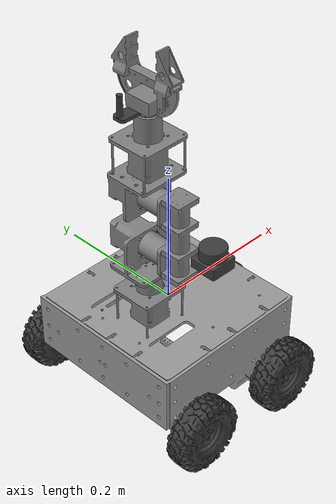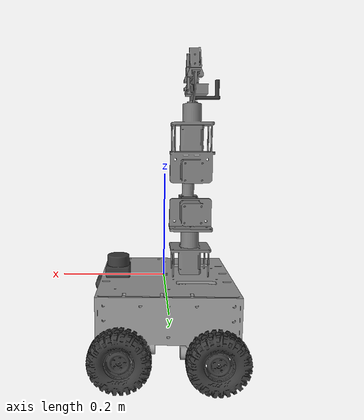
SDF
<sdf version="1.7">
  <model name="mobile_arm_robot">
    <link name="base_link">
      <inertial>
        <pose>0.014618 0.005486 0.023313 0 -0 0</pose>
        <mass>2.66836</mass>
        <inertia>
          <ixx>0.0420107</ixx>
          <ixy>-0.000458565</ixy>
          <ixz>-0.00621837</ixz>
          <iyy>0.0433674</iyy>
          <iyz>-0.00205126</iyz>
          <izz>0.0107035</izz>
        </inertia>
      </inertial>
      <collision name="base_link_collision">
        <pose>-0.000000 -0.000000 0.000000 0.000000 -0.000000 3.141593</pose>
        <geometry>
          <mesh>
            <scale>1 1 1</scale>
            <uri>file:///home/kamel/ros2_ws3_1/src/mobile_arm_robot_description/meshes/base_link.STL</uri>
          </mesh>
        </geometry>
      </collision>
      <collision name="base_link_fixed_joint_lump__arm_base_link_collision_1">
        <pose>-0.050712 -0.014708 0.002000 0.000000 -0.000000 3.141593</pose>
        <geometry>
          <mesh>
            <scale>1 1 1</scale>
            <uri>file:///home/kamel/ros2_ws3_1/src/mobile_arm_robot_description/meshes/arm_base_link.STL</uri>
          </mesh>
        </geometry>
      </collision>
      <collision name="base_link_fixed_joint_lump__arm_link_1_collision_2">
        <pose>-0.050712 -0.014708 0.091000 0.000000 -0.000000 6.283183</pose>
        <geometry>
          <mesh>
            <scale>1 1 1</scale>
            <uri>file:///home/kamel/ros2_ws3_1/src/mobile_arm_robot_description/meshes/arm_link_1.STL</uri>
          </mesh>
        </geometry>
      </collision>
      <collision name="base_link_fixed_joint_lump__arm_link_2_collision_3">
        <pose>-0.050712 -0.050458 0.127193 0.000000 -0.000000 6.283183</pose>
        <geometry>
          <mesh>
            <scale>1 1 1</scale>
            <uri>file:///home/kamel/ros2_ws3_1/src/mobile_arm_robot_description/meshes/arm_link_2.STL</uri>
          </mesh>
        </geometry>
      </collision>
      <collision name="base_link_fixed_joint_lump__arm_link_3_collision_4">
        <pose>-0.050712 -0.050458 0.206517 0.000000 -0.000000 6.283183</pose>
        <geometry>
          <mesh>
            <scale>1 1 1</scale>
            <uri>file:///home/kamel/ros2_ws3_1/src/mobile_arm_robot_description/meshes/arm_link_3.STL</uri>
          </mesh>
        </geometry>
      </collision>
      <collision name="base_link_fixed_joint_lump__arm_link_4_collision_5">
        <pose>-0.050712 -0.014808 0.332717 0.000000 -0.000000 6.283183</pose>
        <geometry>
          <mesh>
            <scale>1 1 1</scale>
            <uri>file:///home/kamel/ros2_ws3_1/src/mobile_arm_robot_description/meshes/arm_link_4.STL</uri>
          </mesh>
        </geometry>
      </collision>
      <collision name="base_link_fixed_joint_lump__arm_camera_link_collision_6">
        <pose>-0.097212 -0.014808 0.375217 0.000000 0.000000 3.141593</pose>
        <geometry>
          <mesh>
            <scale>1 1 1</scale>
            <uri>file:///home/kamel/ros2_ws3_1/src/mobile_arm_robot_description/meshes/arm_camera_link.STL</uri>
          </mesh>
        </geometry>
      </collision>
      <collision name="base_link_fixed_joint_lump__left_gripper_link_collision_7">
        <pose>-0.051212 -0.039808 0.407717 0.000000 -0.000000 6.283183</pose>
        <geometry>
          <mesh>
            <scale>1 1 1</scale>
            <uri>file:///home/kamel/ros2_ws3_1/src/mobile_arm_robot_description/meshes/left_gripper_link.STL</uri>
          </mesh>
        </geometry>
      </collision>
      <collision name="base_link_fixed_joint_lump__right_gripper_link_collision_8">
        <pose>-0.051212 0.010192 0.407717 0.000000 -0.000000 6.283183</pose>
        <geometry>
          <mesh>
            <scale>1 1 1</scale>
            <uri>file:///home/kamel/ros2_ws3_1/src/mobile_arm_robot_description/meshes/right_gripper_link.STL</uri>
          </mesh>
        </geometry>
      </collision>
      <collision name="base_link_fixed_joint_lump__lidar_link_collision_9">
        <pose>0.090862 -0.001797 0.040000 0.000000 -0.000000 3.141593</pose>
        <geometry>
          <mesh>
            <scale>1 1 1</scale>
            <uri>file:///home/kamel/ros2_ws3_1/src/mobile_arm_robot_description/meshes/lidar_link.STL</uri>
          </mesh>
        </geometry>
      </collision>
      <collision name="base_link_fixed_joint_lump__robot_camera_link_collision_10">
        <pose>0.133238 -0.001833 -0.016013 0.000000 -0.000000 3.141593</pose>
        <geometry>
          <mesh>
            <scale>1 1 1</scale>
            <uri>file:///home/kamel/ros2_ws3_1/src/mobile_arm_robot_description/meshes/robot_camera_link.STL</uri>
          </mesh>
        </geometry>
      </collision>
      <visual name="base_link_visual">
        <pose>-0.000000 -0.000000 0.000000 0.000000 -0.000000 3.141593</pose>
        <geometry>
          <mesh>
            <scale>1 1 1</scale>
            <uri>file:///home/kamel/ros2_ws3_1/src/mobile_arm_robot_description/meshes/base_link.STL</uri>
          </mesh>
        </geometry>
        <material>
          <ambient>0.6 0.6 0.6 1</ambient>
          <diffuse>0.6 0.6 0.6 1</diffuse>
          <specular>0.1 0.1 0.1 1</specular>
        </material>
      </visual>
      <visual name="base_link_fixed_joint_lump__arm_base_link_visual_1">
        <pose>-0.050712 -0.014708 0.002000 0.000000 -0.000000 3.141593</pose>
        <geometry>
          <mesh>
            <scale>1 1 1</scale>
            <uri>file:///home/kamel/ros2_ws3_1/src/mobile_arm_robot_description/meshes/arm_base_link.STL</uri>
          </mesh>
        </geometry>
        <material>
          <ambient>0.502 0.502 0.502 1</ambient>
          <diffuse>0.502 0.502 0.502 1</diffuse>
          <specular>0.1 0.1 0.1 1</specular>
        </material>
      </visual>
      <visual name="base_link_fixed_joint_lump__arm_link_1_visual_2">
        <pose>-0.050712 -0.014708 0.091000 0.000000 -0.000000 6.283183</pose>
        <geometry>
          <mesh>
            <scale>1 1 1</scale>
            <uri>file:///home/kamel/ros2_ws3_1/src/mobile_arm_robot_description/meshes/arm_link_1.STL</uri>
          </mesh>
        </geometry>
        <material>
          <ambient>0.502 0.502 0.502 1</ambient>
          <diffuse>0.502 0.502 0.502 1</diffuse>
          <specular>0.1 0.1 0.1 1</specular>
        </material>
      </visual>
      <visual name="base_link_fixed_joint_lump__arm_link_2_visual_3">
        <pose>-0.050712 -0.050458 0.127193 0.000000 -0.000000 6.283183</pose>
        <geometry>
          <mesh>
            <scale>1 1 1</scale>
            <uri>file:///home/kamel/ros2_ws3_1/src/mobile_arm_robot_description/meshes/arm_link_2.STL</uri>
          </mesh>
        </geometry>
        <material>
          <ambient>0.502 0.502 0.502 1</ambient>
          <diffuse>0.502 0.502 0.502 1</diffuse>
          <specular>0.1 0.1 0.1 1</specular>
        </material>
      </visual>
      <visual name="base_link_fixed_joint_lump__arm_link_3_visual_4">
        <pose>-0.050712 -0.050458 0.206517 0.000000 -0.000000 6.283183</pose>
        <geometry>
          <mesh>
            <scale>1 1 1</scale>
            <uri>file:///home/kamel/ros2_ws3_1/src/mobile_arm_robot_description/meshes/arm_link_3.STL</uri>
          </mesh>
        </geometry>
        <material>
          <ambient>0.502 0.502 0.502 1</ambient>
          <diffuse>0.502 0.502 0.502 1</diffuse>
          <specular>0.1 0.1 0.1 1</specular>
        </material>
      </visual>
      <visual name="base_link_fixed_joint_lump__arm_link_4_visual_5">
        <pose>-0.050712 -0.014808 0.332717 0.000000 -0.000000 6.283183</pose>
        <geometry>
          <mesh>
            <scale>1 1 1</scale>
            <uri>file:///home/kamel/ros2_ws3_1/src/mobile_arm_robot_description/meshes/arm_link_4.STL</uri>
          </mesh>
        </geometry>
        <material>
          <ambient>0.502 0.502 0.502 1</ambient>
          <diffuse>0.502 0.502 0.502 1</diffuse>
          <specular>0.1 0.1 0.1 1</specular>
        </material>
      </visual>
      <visual name="base_link_fixed_joint_lump__arm_camera_link_visual_6">
        <pose>-0.097212 -0.014808 0.375217 0.000000 0.000000 3.141593</pose>
        <geometry>
          <mesh>
            <scale>1 1 1</scale>
            <uri>file:///home/kamel/ros2_ws3_1/src/mobile_arm_robot_description/meshes/arm_camera_link.STL</uri>
          </mesh>
        </geometry>
        <material>
          <ambient>0.231 0.231 0.231 1</ambient>
          <diffuse>0.231 0.231 0.231 1</diffuse>
          <specular>0.1 0.1 0.1 1</specular>
        </material>
      </visual>
      <visual name="base_link_fixed_joint_lump__left_gripper_link_visual_7">
        <pose>-0.051212 -0.039808 0.407717 0.000000 -0.000000 6.283183</pose>
        <geometry>
          <mesh>
            <scale>1 1 1</scale>
            <uri>file:///home/kamel/ros2_ws3_1/src/mobile_arm_robot_description/meshes/left_gripper_link.STL</uri>
          </mesh>
        </geometry>
        <material>
          <ambient>0.502 0.502 0.502 1</ambient>
          <diffuse>0.502 0.502 0.502 1</diffuse>
          <specular>0.1 0.1 0.1 1</specular>
        </material>
      </visual>
      <visual name="base_link_fixed_joint_lump__right_gripper_link_visual_8">
        <pose>-0.051212 0.010192 0.407717 0.000000 -0.000000 6.283183</pose>
        <geometry>
          <mesh>
            <scale>1 1 1</scale>
            <uri>file:///home/kamel/ros2_ws3_1/src/mobile_arm_robot_description/meshes/right_gripper_link.STL</uri>
          </mesh>
        </geometry>
        <material>
          <ambient>0.502 0.502 0.502 1</ambient>
          <diffuse>0.502 0.502 0.502 1</diffuse>
          <specular>0.1 0.1 0.1 1</specular>
        </material>
      </visual>
      <visual name="base_link_fixed_joint_lump__lidar_link_visual_9">
        <pose>0.090862 -0.001797 0.040000 0.000000 -0.000000 3.141593</pose>
        <geometry>
          <mesh>
            <scale>1 1 1</scale>
            <uri>file:///home/kamel/ros2_ws3_1/src/mobile_arm_robot_description/meshes/lidar_link.STL</uri>
          </mesh>
        </geometry>
        <material>
          <ambient>0.231 0.231 0.231 1</ambient>
          <diffuse>0.231 0.231 0.231 1</diffuse>
          <specular>0.1 0.1 0.1 1</specular>
        </material>
      </visual>
      <visual name="base_link_fixed_joint_lump__robot_camera_link_visual_10">
        <pose>0.133238 -0.001833 -0.016013 0.000000 -0.000000 3.141593</pose>
        <geometry>
          <mesh>
            <scale>1 1 1</scale>
            <uri>file:///home/kamel/ros2_ws3_1/src/mobile_arm_robot_description/meshes/robot_camera_link.STL</uri>
          </mesh>
        </geometry>
        <material>
          <ambient>0.231 0.231 0.231 1</ambient>
          <diffuse>0.231 0.231 0.231 1</diffuse>
          <specular>0.1 0.1 0.1 1</specular>
        </material>
      </visual>

      <sensor name="lidar_sensor" type="gpu_lidar">
        <pose>0.090862 -0.001797 0.040000 0.000000 0.000000 3.141593</pose>
        <always_on>true</always_on>
        <visualize>false</visualize>
        <update_rate>10</update_rate>
        <topic>/lidar</topic>
        <ray>
          <scan>
            <horizontal>
              <samples>360</samples>
              <resolution>1</resolution>
              <min_angle>-3.14159</min_angle>
              <max_angle>3.14159</max_angle>
            </horizontal>
          </scan>
          <range>
            <min>0.20</min>
            <max>8.0</max>
            <resolution>0.01</resolution>
          </range>
          <noise>
            <type>gaussian</type>
            <mean>0.0</mean>
            <stddev>0.01</stddev>
          </noise>
        </ray>
      </sensor>

      <sensor name="robot_camera_sensor" type="camera">
        <pose>0.133238 -0.001833 -0.016013 0.000000 0.000000 6.283183</pose>
        <always_on>true</always_on>
        <visualize>false</visualize>
        <update_rate>30</update_rate>
        <topic>/robot_camera/image</topic>
        <camera>
          <horizontal_fov>1.047</horizontal_fov>
          <image>
            <width>640</width>
            <height>480</height>
            <format>R8G8B8</format>
          </image>
          <clip>
            <near>0.05</near>
            <far>20.0</far>
          </clip>
        </camera>
      </sensor>

</link>
    <joint name="front_left_wheel_joint" type="revolute">
      <pose relative_to="base_link">-0.086714 -0.159980 -0.104100 0.000000 -0.000000 3.141593</pose>
      <parent>base_link</parent>
      <child>front_left_wheel_link</child>
      <axis>
        <xyz>0 -1 0</xyz>
        <limit>
          <lower>-1e+16</lower>
          <upper>1e+16</upper>
        </limit>
        <dynamics>
          <spring_reference>0</spring_reference>
          <spring_stiffness>0</spring_stiffness>
        </dynamics>
      </axis>
    </joint>
    <link name="front_left_wheel_link">
      <pose relative_to="front_left_wheel_joint">0 0 0 0 -0 0</pose>
      <inertial>
        <pose>0 -0.007684 -6.1e-05 0 -0 0</pose>
        <mass>0.0711334</mass>
        <inertia>
          <ixx>7.86302e-05</ixx>
          <ixy>1.55295e-09</ixy>
          <ixz>7.11242e-10</ixz>
          <iyy>0.000137459</iyy>
          <iyz>6.83774e-10</iyz>
          <izz>7.84461e-05</izz>
        </inertia>
      </inertial>
      <collision name="front_left_wheel_link_collision">
        <pose>0 0 0 0 -0 0</pose>
        <geometry>
          <mesh>
            <scale>1 1 1</scale>
            <uri>file:///home/kamel/ros2_ws3_1/src/mobile_arm_robot_description/meshes/front_left_wheel_link.STL</uri>
          </mesh>
        </geometry>
      </collision>
      <visual name="front_left_wheel_link_visual">
        <pose>0 0 0 0 -0 0</pose>
        <geometry>
          <mesh>
            <scale>1 1 1</scale>
            <uri>file:///home/kamel/ros2_ws3_1/src/mobile_arm_robot_description/meshes/front_left_wheel_link.STL</uri>
          </mesh>
        </geometry>
        <material>
          <ambient>0.231 0.231 0.231 1</ambient>
          <diffuse>0.231 0.231 0.231 1</diffuse>
          <specular>0.1 0.1 0.1 1</specular>
        </material>
      </visual>
    </link>
    <joint name="front_right_wheel_joint" type="revolute">
      <pose relative_to="base_link">-0.086714 0.158220 -0.106100 0.000000 -0.000000 3.141593</pose>
      <parent>base_link</parent>
      <child>front_right_wheel_link</child>
      <axis>
        <xyz>0 -1 0</xyz>
        <limit>
          <lower>-1e+16</lower>
          <upper>1e+16</upper>
        </limit>
        <dynamics>
          <spring_reference>0</spring_reference>
          <spring_stiffness>0</spring_stiffness>
        </dynamics>
      </axis>
    </joint>
    <link name="front_right_wheel_link">
      <pose relative_to="front_right_wheel_joint">0 0 0 0 -0 0</pose>
      <inertial>
        <pose>-0 0.007684 -6.1e-05 0 -0 0</pose>
        <mass>0.0711334</mass>
        <inertia>
          <ixx>7.86302e-05</ixx>
          <ixy>1.55276e-09</ixy>
          <ixz>-7.08139e-10</ixz>
          <iyy>0.000137459</iyy>
          <iyz>-6.77565e-10</iyz>
          <izz>7.84461e-05</izz>
        </inertia>
      </inertial>
      <collision name="front_right_wheel_link_collision">
        <pose>0 0 0 0 -0 0</pose>
        <geometry>
          <mesh>
            <scale>1 1 1</scale>
            <uri>file:///home/kamel/ros2_ws3_1/src/mobile_arm_robot_description/meshes/front_right_wheel_link.STL</uri>
          </mesh>
        </geometry>
      </collision>
      <visual name="front_right_wheel_link_visual">
        <pose>0 0 0 0 -0 0</pose>
        <geometry>
          <mesh>
            <scale>1 1 1</scale>
            <uri>file:///home/kamel/ros2_ws3_1/src/mobile_arm_robot_description/meshes/front_right_wheel_link.STL</uri>
          </mesh>
        </geometry>
        <material>
          <ambient>0.231 0.231 0.231 1</ambient>
          <diffuse>0.231 0.231 0.231 1</diffuse>
          <specular>0.1 0.1 0.1 1</specular>
        </material>
      </visual>
    </link>
    <joint name="rear_left_wheel_joint" type="revolute">
      <pose relative_to="base_link">0.079990 -0.159980 -0.106100 0.000000 -0.000000 3.141593</pose>
      <parent>base_link</parent>
      <child>rear_left_wheel_link</child>
      <axis>
        <xyz>0 -1 0</xyz>
        <limit>
          <lower>-1e+16</lower>
          <upper>1e+16</upper>
        </limit>
        <dynamics>
          <spring_reference>0</spring_reference>
          <spring_stiffness>0</spring_stiffness>
        </dynamics>
      </axis>
    </joint>
    <link name="rear_left_wheel_link">
      <pose relative_to="rear_left_wheel_joint">0 0 0 0 -0 0</pose>
      <inertial>
        <pose>0 -0.007684 -6.1e-05 0 -0 0</pose>
        <mass>0.0711334</mass>
        <inertia>
          <ixx>7.86302e-05</ixx>
          <ixy>1.55315e-09</ixy>
          <ixz>7.09428e-10</ixz>
          <iyy>0.000137459</iyy>
          <iyz>6.83448e-10</iyz>
          <izz>7.84461e-05</izz>
        </inertia>
      </inertial>
      <collision name="rear_left_wheel_link_collision">
        <pose>0 0 0 0 -0 0</pose>
        <geometry>
          <mesh>
            <scale>1 1 1</scale>
            <uri>file:///home/kamel/ros2_ws3_1/src/mobile_arm_robot_description/meshes/rear_left_wheel_link.STL</uri>
          </mesh>
        </geometry>
      </collision>
      <visual name="rear_left_wheel_link_visual">
        <pose>0 0 0 0 -0 0</pose>
        <geometry>
          <mesh>
            <scale>1 1 1</scale>
            <uri>file:///home/kamel/ros2_ws3_1/src/mobile_arm_robot_description/meshes/rear_left_wheel_link.STL</uri>
          </mesh>
        </geometry>
        <material>
          <ambient>0.231 0.231 0.231 1</ambient>
          <diffuse>0.231 0.231 0.231 1</diffuse>
          <specular>0.1 0.1 0.1 1</specular>
        </material>
      </visual>
    </link>
    <joint name="rear_right_wheel_joint" type="revolute">
      <pose relative_to="base_link">0.079990 0.158220 -0.104100 0.000000 -0.000000 3.141593</pose>
      <parent>base_link</parent>
      <child>rear_right_wheel_link</child>
      <axis>
        <xyz>0 -1 0</xyz>
        <limit>
          <lower>-1e+16</lower>
          <upper>1e+16</upper>
        </limit>
        <dynamics>
          <spring_reference>0</spring_reference>
          <spring_stiffness>0</spring_stiffness>
        </dynamics>
      </axis>
    </joint>
    <link name="rear_right_wheel_link">
      <pose relative_to="rear_right_wheel_joint">0 0 0 0 -0 0</pose>
      <inertial>
        <pose>-0 0.007684 -6.1e-05 0 -0 0</pose>
        <mass>0.0711334</mass>
        <inertia>
          <ixx>7.86302e-05</ixx>
          <ixy>1.5495e-09</ixy>
          <ixz>-7.24961e-10</ixz>
          <iyy>0.000137459</iyy>
          <iyz>-6.78976e-10</iyz>
          <izz>7.84462e-05</izz>
        </inertia>
      </inertial>
      <collision name="rear_right_wheel_link_collision">
        <pose>0 0 0 0 -0 0</pose>
        <geometry>
          <mesh>
            <scale>1 1 1</scale>
            <uri>file:///home/kamel/ros2_ws3_1/src/mobile_arm_robot_description/meshes/rear_right_wheel_link.STL</uri>
          </mesh>
        </geometry>
      </collision>
      <visual name="rear_right_wheel_link_visual">
        <pose>0 0 0 0 -0 0</pose>
        <geometry>
          <mesh>
            <scale>1 1 1</scale>
            <uri>file:///home/kamel/ros2_ws3_1/src/mobile_arm_robot_description/meshes/rear_right_wheel_link.STL</uri>
          </mesh>
        </geometry>
        <material>
          <ambient>0.231 0.231 0.231 1</ambient>
          <diffuse>0.231 0.231 0.231 1</diffuse>
          <specular>0.1 0.1 0.1 1</specular>
        </material>
      </visual>
    </link>
    <static>0</static>
    <plugin name="ign_ros2_control::IgnitionROS2ControlPlugin" filename="libign_ros2_control-system.so">
      <robot_param>robot_description</robot_param>
      <robot_param_node>robot_state_publisher</robot_param_node>
      <parameters>/home/kamel/ros2_ws3_1/src/mobile_arm_robot_control/config/controllers.yaml</parameters>
    </plugin>
  </model>
</sdf>
